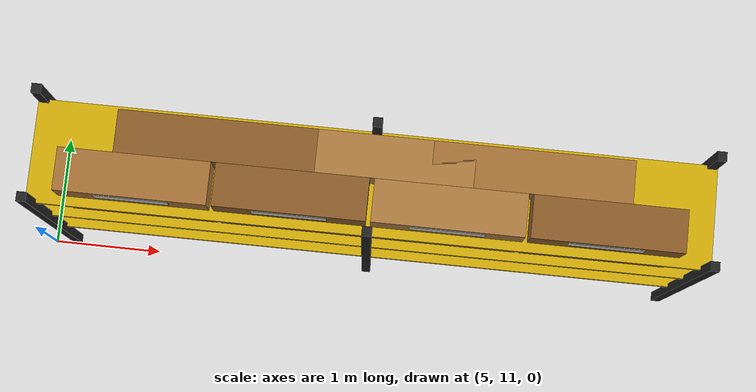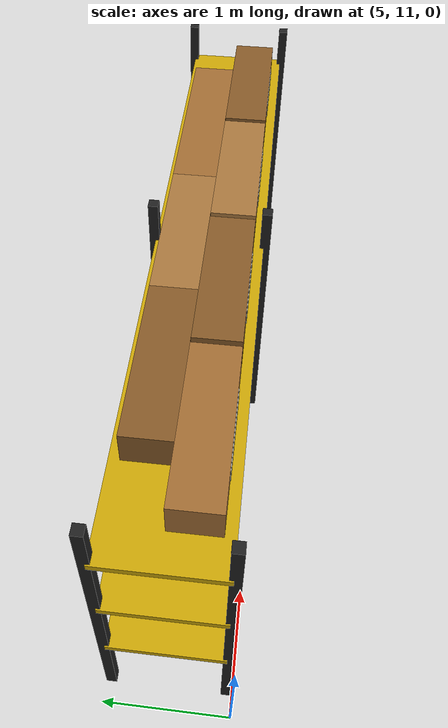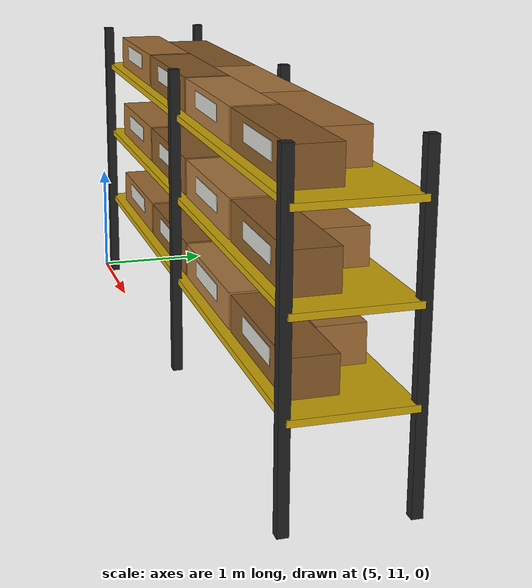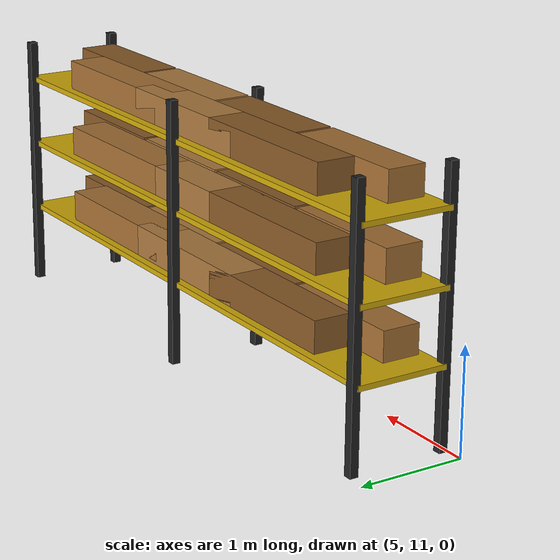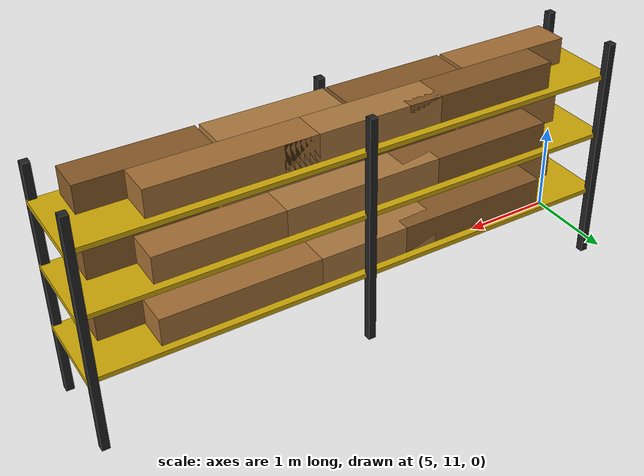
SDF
<sdf version="1.6">
 <world name="aws_industrial_warehouse">
  <model name="shelf_N5">
   <static>true</static>
   <pose>8 11.5 0 0 0 0</pose>
   <link name="pFL">
    <pose>-2.8 -0.45 1.25 0 0 0</pose>
    <collision name="c">
     <geometry><box><size>0.08 0.08 2.5</size></box></geometry>
     <surface><friction><ode><mu>1.0</mu><mu2>1.0</mu2></ode></friction></surface>
    </collision>
    <visual name="v">
     <geometry><box><size>0.08 0.08 2.5</size></box></geometry>
     <material><ambient>0.10 0.10 0.10 1</ambient><diffuse>0.13 0.13 0.13 1</diffuse></material>
    </visual>
   </link>
   <link name="pBL">
    <pose>-2.8 0.45 1.25 0 0 0</pose>
    <collision name="c">
     <geometry><box><size>0.08 0.08 2.5</size></box></geometry>
     <surface><friction><ode><mu>1.0</mu><mu2>1.0</mu2></ode></friction></surface>
    </collision>
    <visual name="v">
     <geometry><box><size>0.08 0.08 2.5</size></box></geometry>
     <material><ambient>0.10 0.10 0.10 1</ambient><diffuse>0.13 0.13 0.13 1</diffuse></material>
    </visual>
   </link>
   <link name="pFC">
    <pose>0.0 -0.45 1.25 0 0 0</pose>
    <collision name="c">
     <geometry><box><size>0.08 0.08 2.5</size></box></geometry>
     <surface><friction><ode><mu>1.0</mu><mu2>1.0</mu2></ode></friction></surface>
    </collision>
    <visual name="v">
     <geometry><box><size>0.08 0.08 2.5</size></box></geometry>
     <material><ambient>0.10 0.10 0.10 1</ambient><diffuse>0.13 0.13 0.13 1</diffuse></material>
    </visual>
   </link>
   <link name="pBC">
    <pose>0.0 0.45 1.25 0 0 0</pose>
    <collision name="c">
     <geometry><box><size>0.08 0.08 2.5</size></box></geometry>
     <surface><friction><ode><mu>1.0</mu><mu2>1.0</mu2></ode></friction></surface>
    </collision>
    <visual name="v">
     <geometry><box><size>0.08 0.08 2.5</size></box></geometry>
     <material><ambient>0.10 0.10 0.10 1</ambient><diffuse>0.13 0.13 0.13 1</diffuse></material>
    </visual>
   </link>
   <link name="pFR">
    <pose>2.8 -0.45 1.25 0 0 0</pose>
    <collision name="c">
     <geometry><box><size>0.08 0.08 2.5</size></box></geometry>
     <surface><friction><ode><mu>1.0</mu><mu2>1.0</mu2></ode></friction></surface>
    </collision>
    <visual name="v">
     <geometry><box><size>0.08 0.08 2.5</size></box></geometry>
     <material><ambient>0.10 0.10 0.10 1</ambient><diffuse>0.13 0.13 0.13 1</diffuse></material>
    </visual>
   </link>
   <link name="pBR">
    <pose>2.8 0.45 1.25 0 0 0</pose>
    <collision name="c">
     <geometry><box><size>0.08 0.08 2.5</size></box></geometry>
     <surface><friction><ode><mu>1.0</mu><mu2>1.0</mu2></ode></friction></surface>
    </collision>
    <visual name="v">
     <geometry><box><size>0.08 0.08 2.5</size></box></geometry>
     <material><ambient>0.10 0.10 0.10 1</ambient><diffuse>0.13 0.13 0.13 1</diffuse></material>
    </visual>
   </link>
   <link name="deck1">
    <pose>0 0 0.77 0 0 0</pose>
    <collision name="c">
     <geometry><box><size>5.7 0.88 0.05</size></box></geometry>
     <surface><friction><ode><mu>1.0</mu><mu2>1.0</mu2></ode></friction></surface>
    </collision>
    <visual name="v">
     <geometry><box><size>5.7 0.88 0.05</size></box></geometry>
     <material><ambient>0.70 0.55 0.02 1</ambient><diffuse>0.82 0.67 0.03 1</diffuse></material>
    </visual>
   </link>
   <link name="deck2">
    <pose>0 0 1.45 0 0 0</pose>
    <collision name="c">
     <geometry><box><size>5.7 0.88 0.05</size></box></geometry>
     <surface><friction><ode><mu>1.0</mu><mu2>1.0</mu2></ode></friction></surface>
    </collision>
    <visual name="v">
     <geometry><box><size>5.7 0.88 0.05</size></box></geometry>
     <material><ambient>0.70 0.55 0.02 1</ambient><diffuse>0.82 0.67 0.03 1</diffuse></material>
    </visual>
   </link>
   <link name="deck3">
    <pose>0 0 2.12 0 0 0</pose>
    <collision name="c">
     <geometry><box><size>5.7 0.88 0.05</size></box></geometry>
     <surface><friction><ode><mu>1.0</mu><mu2>1.0</mu2></ode></friction></surface>
    </collision>
    <visual name="v">
     <geometry><box><size>5.7 0.88 0.05</size></box></geometry>
     <material><ambient>0.70 0.55 0.02 1</ambient><diffuse>0.82 0.67 0.03 1</diffuse></material>
    </visual>
   </link>
   <link name="bF1_1">
    <pose>-1.95 -0.18 0.94 0 0 0</pose>
    <visual name="v">
     <geometry><box><size>1.26 0.36 0.28</size></box></geometry>
     <material><ambient>0.58 0.38 0.18 1</ambient><diffuse>0.65 0.44 0.21 1</diffuse></material>
    </visual>
   </link>
   <link name="lF1_1">
    <pose>-1.95 -0.363 0.97 0 0 0</pose>
    <visual name="v">
     <geometry><box><size>0.62 0.005 0.13</size></box></geometry>
     <material><ambient>0.76 0.76 0.74 1</ambient><diffuse>0.83 0.83 0.81 1</diffuse></material>
    </visual>
   </link>
   <link name="bF1_2">
    <pose>-0.65 -0.18 0.94 0 0 0</pose>
    <visual name="v">
     <geometry><box><size>1.26 0.36 0.28</size></box></geometry>
     <material><ambient>0.48 0.30 0.12 1</ambient><diffuse>0.54 0.36 0.16 1</diffuse></material>
    </visual>
   </link>
   <link name="lF1_2">
    <pose>-0.65 -0.363 0.97 0 0 0</pose>
    <visual name="v">
     <geometry><box><size>0.62 0.005 0.13</size></box></geometry>
     <material><ambient>0.76 0.76 0.74 1</ambient><diffuse>0.83 0.83 0.81 1</diffuse></material>
    </visual>
   </link>
   <link name="bF1_3">
    <pose>0.65 -0.18 0.94 0 0 0</pose>
    <visual name="v">
     <geometry><box><size>1.26 0.36 0.28</size></box></geometry>
     <material><ambient>0.62 0.43 0.22 1</ambient><diffuse>0.68 0.48 0.25 1</diffuse></material>
    </visual>
   </link>
   <link name="lF1_3">
    <pose>0.65 -0.363 0.97 0 0 0</pose>
    <visual name="v">
     <geometry><box><size>0.62 0.005 0.13</size></box></geometry>
     <material><ambient>0.76 0.76 0.74 1</ambient><diffuse>0.83 0.83 0.81 1</diffuse></material>
    </visual>
   </link>
   <link name="bF1_4">
    <pose>1.95 -0.18 0.94 0 0 0</pose>
    <visual name="v">
     <geometry><box><size>1.26 0.36 0.28</size></box></geometry>
     <material><ambient>0.48 0.30 0.12 1</ambient><diffuse>0.54 0.36 0.16 1</diffuse></material>
    </visual>
   </link>
   <link name="lF1_4">
    <pose>1.95 -0.363 0.97 0 0 0</pose>
    <visual name="v">
     <geometry><box><size>0.62 0.005 0.13</size></box></geometry>
     <material><ambient>0.76 0.76 0.74 1</ambient><diffuse>0.83 0.83 0.81 1</diffuse></material>
    </visual>
   </link>
   <link name="bB1_1">
    <pose>-1.3 0.18 0.94 0 0 0</pose>
    <visual name="v">
     <geometry><box><size>1.65 0.36 0.3</size></box></geometry>
     <material><ambient>0.48 0.30 0.12 1</ambient><diffuse>0.54 0.36 0.16 1</diffuse></material>
    </visual>
   </link>
   <link name="bB1_2">
    <pose>0.0 0.18 0.94 0 0 0</pose>
    <visual name="v">
     <geometry><box><size>1.65 0.36 0.3</size></box></geometry>
     <material><ambient>0.62 0.43 0.22 1</ambient><diffuse>0.68 0.48 0.25 1</diffuse></material>
    </visual>
   </link>
   <link name="bB1_3">
    <pose>1.3 0.18 0.94 0 0 0</pose>
    <visual name="v">
     <geometry><box><size>1.65 0.36 0.3</size></box></geometry>
     <material><ambient>0.58 0.38 0.18 1</ambient><diffuse>0.65 0.44 0.21 1</diffuse></material>
    </visual>
   </link>
   <link name="bF2_1">
    <pose>-1.95 -0.18 1.62 0 0 0</pose>
    <visual name="v">
     <geometry><box><size>1.26 0.36 0.32</size></box></geometry>
     <material><ambient>0.58 0.38 0.18 1</ambient><diffuse>0.65 0.44 0.21 1</diffuse></material>
    </visual>
   </link>
   <link name="lF2_1">
    <pose>-1.95 -0.363 1.6500000000000001 0 0 0</pose>
    <visual name="v">
     <geometry><box><size>0.62 0.005 0.13</size></box></geometry>
     <material><ambient>0.76 0.76 0.74 1</ambient><diffuse>0.83 0.83 0.81 1</diffuse></material>
    </visual>
   </link>
   <link name="bF2_2">
    <pose>-0.65 -0.18 1.62 0 0 0</pose>
    <visual name="v">
     <geometry><box><size>1.26 0.36 0.32</size></box></geometry>
     <material><ambient>0.48 0.30 0.12 1</ambient><diffuse>0.54 0.36 0.16 1</diffuse></material>
    </visual>
   </link>
   <link name="lF2_2">
    <pose>-0.65 -0.363 1.6500000000000001 0 0 0</pose>
    <visual name="v">
     <geometry><box><size>0.62 0.005 0.13</size></box></geometry>
     <material><ambient>0.76 0.76 0.74 1</ambient><diffuse>0.83 0.83 0.81 1</diffuse></material>
    </visual>
   </link>
   <link name="bF2_3">
    <pose>0.65 -0.18 1.62 0 0 0</pose>
    <visual name="v">
     <geometry><box><size>1.26 0.36 0.32</size></box></geometry>
     <material><ambient>0.62 0.43 0.22 1</ambient><diffuse>0.68 0.48 0.25 1</diffuse></material>
    </visual>
   </link>
   <link name="lF2_3">
    <pose>0.65 -0.363 1.6500000000000001 0 0 0</pose>
    <visual name="v">
     <geometry><box><size>0.62 0.005 0.13</size></box></geometry>
     <material><ambient>0.76 0.76 0.74 1</ambient><diffuse>0.83 0.83 0.81 1</diffuse></material>
    </visual>
   </link>
   <link name="bF2_4">
    <pose>1.95 -0.18 1.62 0 0 0</pose>
    <visual name="v">
     <geometry><box><size>1.26 0.36 0.32</size></box></geometry>
     <material><ambient>0.48 0.30 0.12 1</ambient><diffuse>0.54 0.36 0.16 1</diffuse></material>
    </visual>
   </link>
   <link name="lF2_4">
    <pose>1.95 -0.363 1.6500000000000001 0 0 0</pose>
    <visual name="v">
     <geometry><box><size>0.62 0.005 0.13</size></box></geometry>
     <material><ambient>0.76 0.76 0.74 1</ambient><diffuse>0.83 0.83 0.81 1</diffuse></material>
    </visual>
   </link>
   <link name="bB2_1">
    <pose>-1.3 0.18 1.62 0 0 0</pose>
    <visual name="v">
     <geometry><box><size>1.65 0.36 0.28</size></box></geometry>
     <material><ambient>0.48 0.30 0.12 1</ambient><diffuse>0.54 0.36 0.16 1</diffuse></material>
    </visual>
   </link>
   <link name="bB2_2">
    <pose>0.0 0.18 1.62 0 0 0</pose>
    <visual name="v">
     <geometry><box><size>1.65 0.36 0.28</size></box></geometry>
     <material><ambient>0.62 0.43 0.22 1</ambient><diffuse>0.68 0.48 0.25 1</diffuse></material>
    </visual>
   </link>
   <link name="bB2_3">
    <pose>1.3 0.18 1.62 0 0 0</pose>
    <visual name="v">
     <geometry><box><size>1.65 0.36 0.28</size></box></geometry>
     <material><ambient>0.58 0.38 0.18 1</ambient><diffuse>0.65 0.44 0.21 1</diffuse></material>
    </visual>
   </link>
   <link name="bF3_1">
    <pose>-1.95 -0.18 2.29 0 0 0</pose>
    <visual name="v">
     <geometry><box><size>1.26 0.36 0.28</size></box></geometry>
     <material><ambient>0.58 0.38 0.18 1</ambient><diffuse>0.65 0.44 0.21 1</diffuse></material>
    </visual>
   </link>
   <link name="lF3_1">
    <pose>-1.95 -0.363 2.32 0 0 0</pose>
    <visual name="v">
     <geometry><box><size>0.62 0.005 0.13</size></box></geometry>
     <material><ambient>0.76 0.76 0.74 1</ambient><diffuse>0.83 0.83 0.81 1</diffuse></material>
    </visual>
   </link>
   <link name="bF3_2">
    <pose>-0.65 -0.18 2.29 0 0 0</pose>
    <visual name="v">
     <geometry><box><size>1.26 0.36 0.28</size></box></geometry>
     <material><ambient>0.48 0.30 0.12 1</ambient><diffuse>0.54 0.36 0.16 1</diffuse></material>
    </visual>
   </link>
   <link name="lF3_2">
    <pose>-0.65 -0.363 2.32 0 0 0</pose>
    <visual name="v">
     <geometry><box><size>0.62 0.005 0.13</size></box></geometry>
     <material><ambient>0.76 0.76 0.74 1</ambient><diffuse>0.83 0.83 0.81 1</diffuse></material>
    </visual>
   </link>
   <link name="bF3_3">
    <pose>0.65 -0.18 2.29 0 0 0</pose>
    <visual name="v">
     <geometry><box><size>1.26 0.36 0.28</size></box></geometry>
     <material><ambient>0.62 0.43 0.22 1</ambient><diffuse>0.68 0.48 0.25 1</diffuse></material>
    </visual>
   </link>
   <link name="lF3_3">
    <pose>0.65 -0.363 2.32 0 0 0</pose>
    <visual name="v">
     <geometry><box><size>0.62 0.005 0.13</size></box></geometry>
     <material><ambient>0.76 0.76 0.74 1</ambient><diffuse>0.83 0.83 0.81 1</diffuse></material>
    </visual>
   </link>
   <link name="bF3_4">
    <pose>1.95 -0.18 2.29 0 0 0</pose>
    <visual name="v">
     <geometry><box><size>1.26 0.36 0.28</size></box></geometry>
     <material><ambient>0.48 0.30 0.12 1</ambient><diffuse>0.54 0.36 0.16 1</diffuse></material>
    </visual>
   </link>
   <link name="lF3_4">
    <pose>1.95 -0.363 2.32 0 0 0</pose>
    <visual name="v">
     <geometry><box><size>0.62 0.005 0.13</size></box></geometry>
     <material><ambient>0.76 0.76 0.74 1</ambient><diffuse>0.83 0.83 0.81 1</diffuse></material>
    </visual>
   </link>
   <link name="bB3_1">
    <pose>-1.3 0.18 2.29 0 0 0</pose>
    <visual name="v">
     <geometry><box><size>1.65 0.36 0.28</size></box></geometry>
     <material><ambient>0.48 0.30 0.12 1</ambient><diffuse>0.54 0.36 0.16 1</diffuse></material>
    </visual>
   </link>
   <link name="bB3_2">
    <pose>0.0 0.18 2.29 0 0 0</pose>
    <visual name="v">
     <geometry><box><size>1.65 0.36 0.28</size></box></geometry>
     <material><ambient>0.62 0.43 0.22 1</ambient><diffuse>0.68 0.48 0.25 1</diffuse></material>
    </visual>
   </link>
   <link name="bB3_3">
    <pose>1.3 0.18 2.29 0 0 0</pose>
    <visual name="v">
     <geometry><box><size>1.65 0.36 0.28</size></box></geometry>
     <material><ambient>0.58 0.38 0.18 1</ambient><diffuse>0.65 0.44 0.21 1</diffuse></material>
    </visual>
   </link>
  </model>
 </world>
</sdf>
